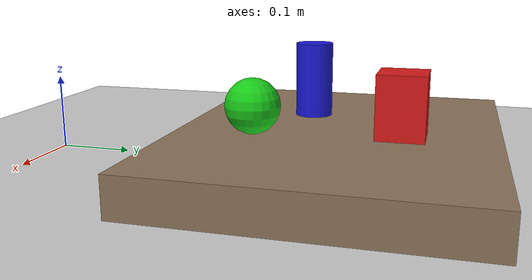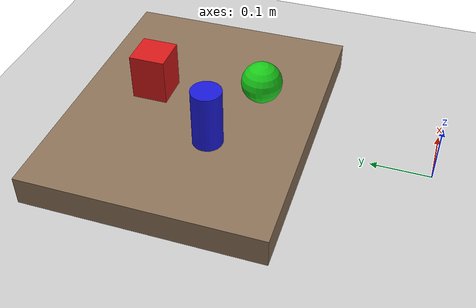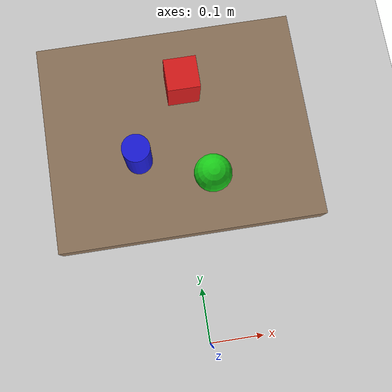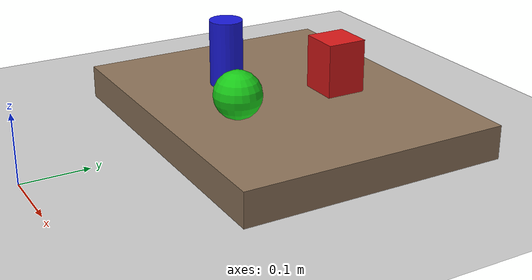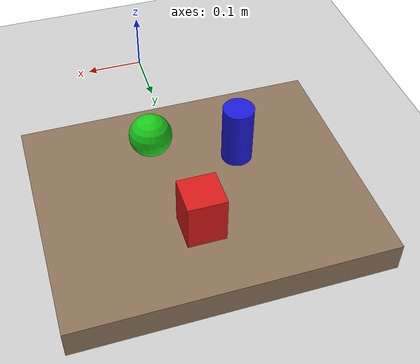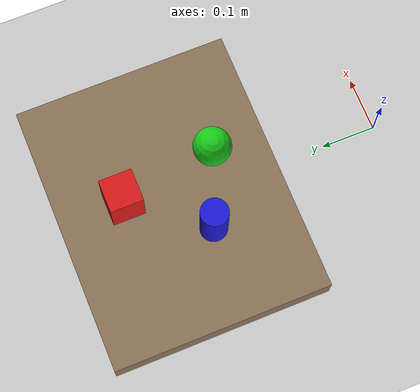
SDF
<?xml version="1.0"?>
<!--
  arctos_world.sdf
  Minimal Gazebo Harmonic world for the Arctos robot arm simulation.
  Contains a ground plane and directional lighting only — keeps startup fast.
-->
<sdf version="1.9">
  <world name="arctos_world">

    <physics name="1ms" type="dart">
      <max_step_size>0.001</max_step_size>
      <real_time_factor>1.0</real_time_factor>
      <dart>
        <solver>
          <iters>200</iters>
        </solver>
      </dart>
    </physics>

    <!-- Required system plugins for gz-harmonic -->
    <plugin filename="gz-sim-physics-system"
            name="gz::sim::systems::Physics"/>
    <plugin filename="gz-sim-user-commands-system"
            name="gz::sim::systems::UserCommands"/>
    <plugin filename="gz-sim-scene-broadcaster-system"
            name="gz::sim::systems::SceneBroadcaster"/>
    <plugin filename="gz-sim-sensors-system"
            name="gz::sim::systems::Sensors">
      <render_engine>ogre</render_engine>
    </plugin>
    <plugin filename="gz-sim-contact-system"
            name="gz::sim::systems::Contact"/>

    <!-- Directional sunlight -->
    <light name="sun" type="directional">
      <cast_shadows>true</cast_shadows>
      <pose>0 0 10 0 0 0</pose>
      <diffuse>0.8 0.8 0.8 1</diffuse>
      <specular>0.2 0.2 0.2 1</specular>
      <attenuation>
        <range>1000</range>
        <constant>0.9</constant>
        <linear>0.01</linear>
        <quadratic>0.001</quadratic>
      </attenuation>
      <direction>-0.5 0.1 -0.9</direction>
    </light>

    <!-- Fill light — softens shadows cast toward the camera -->
    <light name="fill" type="directional">
      <cast_shadows>false</cast_shadows>
      <pose>0 0 5 0 0 0</pose>
      <diffuse>0.4 0.4 0.4 1</diffuse>
      <specular>0.0 0.0 0.0 1</specular>
      <attenuation>
        <range>1000</range>
        <constant>0.9</constant>
        <linear>0.01</linear>
        <quadratic>0.001</quadratic>
      </attenuation>
      <direction>0.5 -0.1 -0.5</direction>
    </light>

    <!-- Ground plane -->
    <model name="ground_plane">
      <static>true</static>
      <link name="link">
        <collision name="collision">
          <geometry>
            <plane>
              <normal>0 0 1</normal>
              <size>20 20</size>
            </plane>
          </geometry>
          <surface>
            <contact>
              <ode>
                <max_vel>0.01</max_vel>
                <min_depth>0.001</min_depth>
              </ode>
            </contact>
          </surface>
        </collision>
        <visual name="visual">
          <geometry>
            <plane>
              <normal>0 0 1</normal>
              <size>20 20</size>
            </plane>
          </geometry>
          <material>
            <ambient>0.8 0.8 0.8 1</ambient>
            <diffuse>0.8 0.8 0.8 1</diffuse>
            <specular>0.8 0.8 0.8 1</specular>
          </material>
        </visual>
      </link>
    </model>

    <!-- Test objects — positioned in the D435 camera's gaze zone.   -->
    <!-- Camera is at (0, 0.20, 0.45) on base_link, pitched 31°     -->
    <!-- downward, yaw 90° → gaze centre hits table at ~(0, 0.4,    -->
    <!-- 0.05).  All models are static so they don't fall or drift.  -->

    <!-- Table: 0.5×0.4×0.05 m, top surface at z=0.05 m -->
    <model name="table">
      <static>true</static>
      <pose>0 0.4 0.025 0 0 0</pose>
      <link name="link">
        <collision name="collision">
          <geometry><box><size>0.5 0.4 0.05</size></box></geometry>
        </collision>
        <visual name="visual">
          <geometry><box><size>0.5 0.4 0.05</size></box></geometry>
          <material>
            <ambient>0.55 0.45 0.35 1</ambient>
            <diffuse>0.55 0.45 0.35 1</diffuse>
            <specular>0.1 0.1 0.1 1</specular>
          </material>
        </visual>
      </link>
    </model>

    <!-- Red box: 6×6×8 cm, centre at (0.02, 0.48, 0.09) -->
    <model name="red_box">
      <static>true</static>
      <pose>0.02 0.48 0.09 0 0 0</pose>
      <link name="link">
        <collision name="collision">
          <geometry><box><size>0.06 0.06 0.08</size></box></geometry>
        </collision>
        <visual name="visual">
          <geometry><box><size>0.06 0.06 0.08</size></box></geometry>
          <material>
            <ambient>0.85 0.1 0.1 1</ambient>
            <diffuse>0.85 0.1 0.1 1</diffuse>
            <specular>0.3 0.1 0.1 1</specular>
          </material>
        </visual>
      </link>
    </model>

    <!-- Blue cylinder: radius=0.025 m, height=0.10 m -->
    <model name="blue_cylinder">
      <static>true</static>
      <pose>-0.08 0.35 0.10 0 0 0</pose>
      <link name="link">
        <collision name="collision">
          <geometry><cylinder><radius>0.025</radius><length>0.10</length></cylinder></geometry>
        </collision>
        <visual name="visual">
          <geometry><cylinder><radius>0.025</radius><length>0.10</length></cylinder></geometry>
          <material>
            <ambient>0.1 0.1 0.85 1</ambient>
            <diffuse>0.1 0.1 0.85 1</diffuse>
            <specular>0.1 0.1 0.3 1</specular>
          </material>
        </visual>
      </link>
    </model>

    <!-- Green sphere: radius=0.035 m -->
    <model name="green_sphere">
      <static>true</static>
      <pose>0.05 0.30 0.085 0 0 0</pose>
      <link name="link">
        <collision name="collision">
          <geometry><sphere><radius>0.035</radius></sphere></geometry>
        </collision>
        <visual name="visual">
          <geometry><sphere><radius>0.035</radius></sphere></geometry>
          <material>
            <ambient>0.1 0.8 0.1 1</ambient>
            <diffuse>0.1 0.8 0.1 1</diffuse>
            <specular>0.1 0.3 0.1 1</specular>
          </material>
        </visual>
      </link>
    </model>

  </world>
</sdf>
